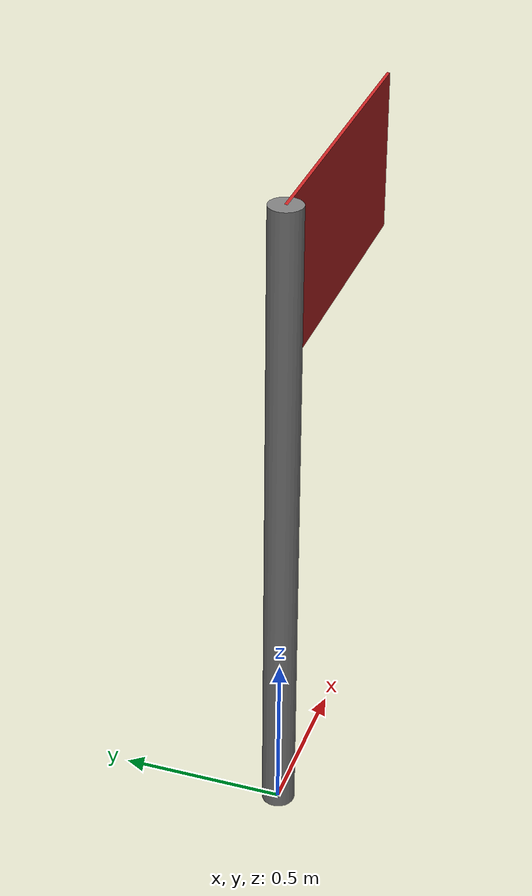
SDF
<?xml version="1.0" ?>
<sdf version="1.6">
  <model name="flag">
    <!-- Posizione della bandiera nel mondo -->
    <pose>0 0 0 0 0 0</pose>

    <!-- Palo della bandiera -->
    <link name="pole">
      <pose>0 0 1 0 0 0</pose> <!-- Posizionare il palo verticalmente -->
      <collision name="pole_collision">
        <geometry>
          <cylinder>
            <radius>0.05</radius> <!-- Spessore del palo -->
            <length>2</length>    <!-- Altezza del palo -->
          </cylinder>
        </geometry>
      </collision>
      <visual name="pole_visual">
        <geometry>
          <cylinder>
            <radius>0.05</radius>
            <length>2</length>
          </cylinder>
        </geometry>
        <material>
          <ambient>0.5 0.5 0.5 1</ambient> <!-- Colore grigio per il palo -->
          <diffuse>0.5 0.5 0.5 1</diffuse>
        </material>
      </visual>
    </link>

    <!-- Tessuto della bandiera -->
    <link name="flag_cloth">
      <pose>0.5 0 1.75 0 0 0</pose> <!-- Posizionare il tessuto all'estremità del palo -->
      <collision name="cloth_collision">
        <geometry>
          <box>
            <size>1 0.01 0.5</size> <!-- Dimensioni del tessuto della bandiera -->
          </box>
        </geometry>
      </collision>
      <visual name="cloth_visual">
        <geometry>
          <box>
            <size>1 0.01 0.5</size>
          </box>
        </geometry>
        <material>
          <script>
            <uri>file://media/materials/scripts/gazebo.material</uri> <!-- Usa una texture o colore -->
            <name>Gazebo/Red</name> <!-- Colore rosso per la bandiera -->
          </script>
        </material>
      </visual>
    </link>

  </model>
</sdf>
